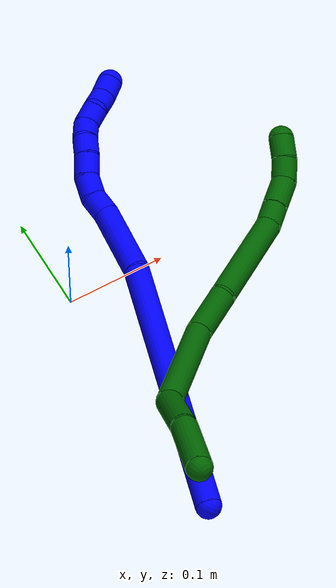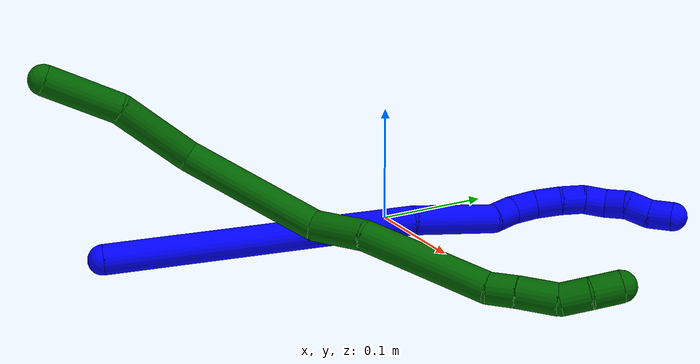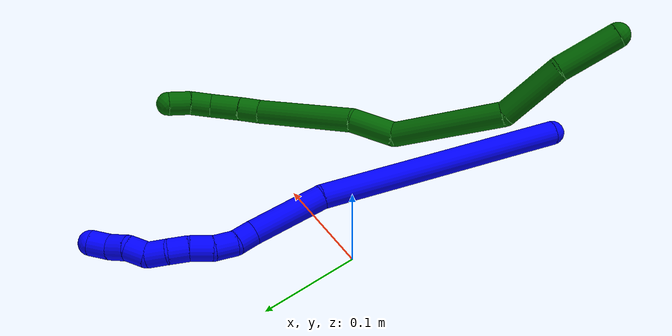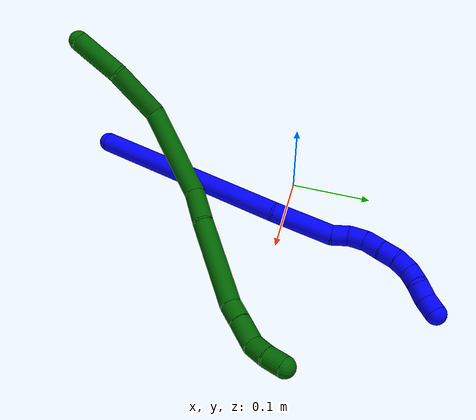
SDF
<sdf version="1.7">
 <world name="default">
  <model name="1">
   <static>0</static>
   <link name="1">
    <collision name="collision-cylinder-e_1_1_4">
     <pose>0.044026 0.105934 0.05769 -1.07212 0.349961 -0.209288</pose>
     <geometry><cylinder><radius>0.0125</radius><length>0.256816</length></cylinder></geometry>
     <surface>
      <friction><ode><mu>1.16</mu><mu2>1.16</mu2><slip1>0</slip1><slip2>0</slip2></ode></friction>
      <contact><ode><kp>1e+06</kp><kd>1</kd><max_vel>0</max_vel><min_depth>0.001</min_depth></ode></contact>
     </surface>
    </collision>
    <visual name="visual-cylinder-e_1_1_4">
     <pose>0.044026 0.105934 0.05769 -1.07212 0.349961 -0.209288</pose>
     <geometry><cylinder><radius>0.0125</radius><length>0.256816</length></cylinder></geometry>
     <material><ambient>0 0 1 1</ambient></material>
    </visual>
    <collision name="collision-cylinder-e_2_4_5">
     <pose>0.102269 0.246281 0.125098 -1.2956 0.378434 -0.287841</pose>
     <geometry><cylinder><radius>0.0125</radius><length>0.076962</length></cylinder></geometry>
     <surface>
      <friction><ode><mu>1.16</mu><mu2>1.16</mu2><slip1>0</slip1><slip2>0</slip2></ode></friction>
      <contact><ode><kp>1e+06</kp><kd>1</kd><max_vel>0</max_vel><min_depth>0.001</min_depth></ode></contact>
     </surface>
    </collision>
    <visual name="visual-cylinder-e_2_4_5">
     <pose>0.102269 0.246281 0.125098 -1.2956 0.378434 -0.287841</pose>
     <geometry><cylinder><radius>0.0125</radius><length>0.076962</length></cylinder></geometry>
     <material><ambient>0 0 1 1</ambient></material>
    </visual>
    <collision name="collision-cylinder-e_3_5_6">
     <pose>0.116732 0.290933 0.137765 -1.29019 0.023012 -0.017316</pose>
     <geometry><cylinder><radius>0.0125</radius><length>0.021317</length></cylinder></geometry>
     <surface>
      <friction><ode><mu>1.16</mu><mu2>1.16</mu2><slip1>0</slip1><slip2>0</slip2></ode></friction>
      <contact><ode><kp>1e+06</kp><kd>1</kd><max_vel>0</max_vel><min_depth>0.001</min_depth></ode></contact>
     </surface>
    </collision>
    <visual name="visual-cylinder-e_3_5_6">
     <pose>0.116732 0.290933 0.137765 -1.29019 0.023012 -0.017316</pose>
     <geometry><cylinder><radius>0.0125</radius><length>0.021317</length></cylinder></geometry>
     <material><ambient>0 0 1 1</ambient></material>
    </visual>
    <collision name="collision-cylinder-e_4_6_7">
     <pose>0.119586 0.31037 0.146283 -1.02653 0.238033 -0.134602</pose>
     <geometry><cylinder><radius>0.0125</radius><length>0.022126</length></cylinder></geometry>
     <surface>
      <friction><ode><mu>1.16</mu><mu2>1.16</mu2><slip1>0</slip1><slip2>0</slip2></ode></friction>
      <contact><ode><kp>1e+06</kp><kd>1</kd><max_vel>0</max_vel><min_depth>0.001</min_depth></ode></contact>
     </surface>
    </collision>
    <visual name="visual-cylinder-e_4_6_7">
     <pose>0.119586 0.31037 0.146283 -1.02653 0.238033 -0.134602</pose>
     <geometry><cylinder><radius>0.0125</radius><length>0.022126</length></cylinder></geometry>
     <material><ambient>0 0 1 1</ambient></material>
    </visual>
    <collision name="collision-cylinder-e_5_7_8">
     <pose>0.126632 0.326802 0.159311 -0.769912 0.403561 -0.165389</pose>
     <geometry><cylinder><radius>0.0125</radius><length>0.022601</length></cylinder></geometry>
     <surface>
      <friction><ode><mu>1.16</mu><mu2>1.16</mu2><slip1>0</slip1><slip2>0</slip2></ode></friction>
      <contact><ode><kp>1e+06</kp><kd>1</kd><max_vel>0</max_vel><min_depth>0.001</min_depth></ode></contact>
     </surface>
    </collision>
    <visual name="visual-cylinder-e_5_7_8">
     <pose>0.126632 0.326802 0.159311 -0.769912 0.403561 -0.165389</pose>
     <geometry><cylinder><radius>0.0125</radius><length>0.022601</length></cylinder></geometry>
     <material><ambient>0 0 1 1</ambient></material>
    </visual>
    <collision name="collision-cylinder-e_6_8_9">
     <pose>0.135444 0.341338 0.172107 -0.939927 0.450541 -0.231747</pose>
     <geometry><cylinder><radius>0.0125</radius><length>0.02009</length></cylinder></geometry>
     <surface>
      <friction><ode><mu>1.16</mu><mu2>1.16</mu2><slip1>0</slip1><slip2>0</slip2></ode></friction>
      <contact><ode><kp>1e+06</kp><kd>1</kd><max_vel>0</max_vel><min_depth>0.001</min_depth></ode></contact>
     </surface>
    </collision>
    <visual name="visual-cylinder-e_6_8_9">
     <pose>0.135444 0.341338 0.172107 -0.939927 0.450541 -0.231747</pose>
     <geometry><cylinder><radius>0.0125</radius><length>0.02009</length></cylinder></geometry>
     <material><ambient>0 0 1 1</ambient></material>
    </visual>
    <collision name="collision-cylinder-e_7_9_10">
     <pose>0.146221 0.35491 0.181914 -0.951097 0.693509 -0.367963</pose>
     <geometry><cylinder><radius>0.0125</radius><length>0.020032</length></cylinder></geometry>
     <surface>
      <friction><ode><mu>1.16</mu><mu2>1.16</mu2><slip1>0</slip1><slip2>0</slip2></ode></friction>
      <contact><ode><kp>1e+06</kp><kd>1</kd><max_vel>0</max_vel><min_depth>0.001</min_depth></ode></contact>
     </surface>
    </collision>
    <visual name="visual-cylinder-e_7_9_10">
     <pose>0.146221 0.35491 0.181914 -0.951097 0.693509 -0.367963</pose>
     <geometry><cylinder><radius>0.0125</radius><length>0.020032</length></cylinder></geometry>
     <material><ambient>0 0 1 1</ambient></material>
    </visual>
    <collision name="collision-cylinder-e_8_10_11">
     <pose>0.158653 0.363615 0.19401 -0.309266 0.64576 -0.104215</pose>
     <geometry><cylinder><radius>0.0125</radius><length>0.020038</length></cylinder></geometry>
     <surface>
      <friction><ode><mu>1.16</mu><mu2>1.16</mu2><slip1>0</slip1><slip2>0</slip2></ode></friction>
      <contact><ode><kp>1e+06</kp><kd>1</kd><max_vel>0</max_vel><min_depth>0.001</min_depth></ode></contact>
     </surface>
    </collision>
    <visual name="visual-cylinder-e_8_10_11">
     <pose>0.158653 0.363615 0.19401 -0.309266 0.64576 -0.104215</pose>
     <geometry><cylinder><radius>0.0125</radius><length>0.020038</length></cylinder></geometry>
     <material><ambient>0 0 1 1</ambient></material>
    </visual>
    <collision name="collision-cylinder-e_9_11_12">
     <pose>0.172929 0.36935 0.206242 -0.621224 0.96855 -0.334575</pose>
     <geometry><cylinder><radius>0.0125</radius><length>0.020015</length></cylinder></geometry>
     <surface>
      <friction><ode><mu>1.16</mu><mu2>1.16</mu2><slip1>0</slip1><slip2>0</slip2></ode></friction>
      <contact><ode><kp>1e+06</kp><kd>1</kd><max_vel>0</max_vel><min_depth>0.001</min_depth></ode></contact>
     </surface>
    </collision>
    <visual name="visual-cylinder-e_9_11_12">
     <pose>0.172929 0.36935 0.206242 -0.621224 0.96855 -0.334575</pose>
     <geometry><cylinder><radius>0.0125</radius><length>0.020015</length></cylinder></geometry>
     <material><ambient>0 0 1 1</ambient></material>
    </visual>
    <collision name="collision-cylinder-e_10_12_2">
     <pose>0.187566 0.376164 0.217696 -0.474324 0.693052 -0.174121</pose>
     <geometry><cylinder><radius>0.0125</radius><length>0.020003</length></cylinder></geometry>
     <surface>
      <friction><ode><mu>1.16</mu><mu2>1.16</mu2><slip1>0</slip1><slip2>0</slip2></ode></friction>
      <contact><ode><kp>1e+06</kp><kd>1</kd><max_vel>0</max_vel><min_depth>0.001</min_depth></ode></contact>
     </surface>
    </collision>
    <visual name="visual-cylinder-e_10_12_2">
     <pose>0.187566 0.376164 0.217696 -0.474324 0.693052 -0.174121</pose>
     <geometry><cylinder><radius>0.0125</radius><length>0.020003</length></cylinder></geometry>
     <material><ambient>0 0 1 1</ambient></material>
    </visual>
    <collision name="collision-sphere-2">
     <pose>0.193956 0.379678 0.224541 0 -0 0</pose>
     <geometry><sphere><radius>0.0125</radius></sphere></geometry>
     <surface>
      <friction><ode><mu>1.16</mu><mu2>1.16</mu2><slip1>0</slip1><slip2>0</slip2></ode></friction>
      <contact><ode><kp>1e+06</kp><kd>1</kd><max_vel>0</max_vel><min_depth>0.001</min_depth></ode></contact>
     </surface>
    </collision>
    <visual name="visual-sphere-2">
     <pose>0.193956 0.379678 0.224541 0 -0 0</pose>
     <geometry><sphere><radius>0.0125</radius></sphere></geometry>
     <material><ambient>0 0 1 1</ambient></material>
    </visual>
    <collision name="collision-sphere-12">
     <pose>0.181176 0.37265 0.210852 0 -0 0</pose>
     <geometry><sphere><radius>0.0125</radius></sphere></geometry>
     <surface>
      <friction><ode><mu>1.16</mu><mu2>1.16</mu2><slip1>0</slip1><slip2>0</slip2></ode></friction>
      <contact><ode><kp>1e+06</kp><kd>1</kd><max_vel>0</max_vel><min_depth>0.001</min_depth></ode></contact>
     </surface>
    </collision>
    <visual name="visual-sphere-12">
     <pose>0.181176 0.37265 0.210852 0 -0 0</pose>
     <geometry><sphere><radius>0.0125</radius></sphere></geometry>
     <material><ambient>0 0 1 1</ambient></material>
    </visual>
    <collision name="collision-sphere-11">
     <pose>0.164682 0.366051 0.201632 0 -0 0</pose>
     <geometry><sphere><radius>0.0125</radius></sphere></geometry>
     <surface>
      <friction><ode><mu>1.16</mu><mu2>1.16</mu2><slip1>0</slip1><slip2>0</slip2></ode></friction>
      <contact><ode><kp>1e+06</kp><kd>1</kd><max_vel>0</max_vel><min_depth>0.001</min_depth></ode></contact>
     </surface>
    </collision>
    <visual name="visual-sphere-11">
     <pose>0.164682 0.366051 0.201632 0 -0 0</pose>
     <geometry><sphere><radius>0.0125</radius></sphere></geometry>
     <material><ambient>0 0 1 1</ambient></material>
    </visual>
    <collision name="collision-sphere-10">
     <pose>0.152623 0.36118 0.186387 0 -0 0</pose>
     <geometry><sphere><radius>0.0125</radius></sphere></geometry>
     <surface>
      <friction><ode><mu>1.16</mu><mu2>1.16</mu2><slip1>0</slip1><slip2>0</slip2></ode></friction>
      <contact><ode><kp>1e+06</kp><kd>1</kd><max_vel>0</max_vel><min_depth>0.001</min_depth></ode></contact>
     </surface>
    </collision>
    <visual name="visual-sphere-10">
     <pose>0.152623 0.36118 0.186387 0 -0 0</pose>
     <geometry><sphere><radius>0.0125</radius></sphere></geometry>
     <material><ambient>0 0 1 1</ambient></material>
    </visual>
    <collision name="collision-sphere-9">
     <pose>0.139818 0.34864 0.177441 0 -0 0</pose>
     <geometry><sphere><radius>0.0125</radius></sphere></geometry>
     <surface>
      <friction><ode><mu>1.16</mu><mu2>1.16</mu2><slip1>0</slip1><slip2>0</slip2></ode></friction>
      <contact><ode><kp>1e+06</kp><kd>1</kd><max_vel>0</max_vel><min_depth>0.001</min_depth></ode></contact>
     </surface>
    </collision>
    <visual name="visual-sphere-9">
     <pose>0.139818 0.34864 0.177441 0 -0 0</pose>
     <geometry><sphere><radius>0.0125</radius></sphere></geometry>
     <material><ambient>0 0 1 1</ambient></material>
    </visual>
    <collision name="collision-sphere-4">
     <pose>0.088052 0.211869 0.115381 0 -0 0</pose>
     <geometry><sphere><radius>0.0125</radius></sphere></geometry>
     <surface>
      <friction><ode><mu>1.16</mu><mu2>1.16</mu2><slip1>0</slip1><slip2>0</slip2></ode></friction>
      <contact><ode><kp>1e+06</kp><kd>1</kd><max_vel>0</max_vel><min_depth>0.001</min_depth></ode></contact>
     </surface>
    </collision>
    <visual name="visual-sphere-4">
     <pose>0.088052 0.211869 0.115381 0 -0 0</pose>
     <geometry><sphere><radius>0.0125</radius></sphere></geometry>
     <material><ambient>0 0 1 1</ambient></material>
    </visual>
    <collision name="collision-sphere-1">
     <geometry><sphere><radius>0.0125</radius></sphere></geometry>
     <surface>
      <friction><ode><mu>1.16</mu><mu2>1.16</mu2><slip1>0</slip1><slip2>0</slip2></ode></friction>
      <contact><ode><kp>1e+06</kp><kd>1</kd><max_vel>0</max_vel><min_depth>0.001</min_depth></ode></contact>
     </surface>
    </collision>
    <visual name="visual-sphere-1">
     <geometry><sphere><radius>0.0125</radius></sphere></geometry>
     <material><ambient>0 0 1 1</ambient></material>
    </visual>
    <collision name="collision-sphere-8">
     <pose>0.13107 0.334036 0.166773 0 -0 0</pose>
     <geometry><sphere><radius>0.0125</radius></sphere></geometry>
     <surface>
      <friction><ode><mu>1.16</mu><mu2>1.16</mu2><slip1>0</slip1><slip2>0</slip2></ode></friction>
      <contact><ode><kp>1e+06</kp><kd>1</kd><max_vel>0</max_vel><min_depth>0.001</min_depth></ode></contact>
     </surface>
    </collision>
    <visual name="visual-sphere-8">
     <pose>0.13107 0.334036 0.166773 0 -0 0</pose>
     <geometry><sphere><radius>0.0125</radius></sphere></geometry>
     <material><ambient>0 0 1 1</ambient></material>
    </visual>
    <collision name="collision-sphere-5">
     <pose>0.116487 0.280694 0.134814 0 -0 0</pose>
     <geometry><sphere><radius>0.0125</radius></sphere></geometry>
     <surface>
      <friction><ode><mu>1.16</mu><mu2>1.16</mu2><slip1>0</slip1><slip2>0</slip2></ode></friction>
      <contact><ode><kp>1e+06</kp><kd>1</kd><max_vel>0</max_vel><min_depth>0.001</min_depth></ode></contact>
     </surface>
    </collision>
    <visual name="visual-sphere-5">
     <pose>0.116487 0.280694 0.134814 0 -0 0</pose>
     <geometry><sphere><radius>0.0125</radius></sphere></geometry>
     <material><ambient>0 0 1 1</ambient></material>
    </visual>
    <collision name="collision-sphere-6">
     <pose>0.116977 0.301172 0.140716 0 -0 0</pose>
     <geometry><sphere><radius>0.0125</radius></sphere></geometry>
     <surface>
      <friction><ode><mu>1.16</mu><mu2>1.16</mu2><slip1>0</slip1><slip2>0</slip2></ode></friction>
      <contact><ode><kp>1e+06</kp><kd>1</kd><max_vel>0</max_vel><min_depth>0.001</min_depth></ode></contact>
     </surface>
    </collision>
    <visual name="visual-sphere-6">
     <pose>0.116977 0.301172 0.140716 0 -0 0</pose>
     <geometry><sphere><radius>0.0125</radius></sphere></geometry>
     <material><ambient>0 0 1 1</ambient></material>
    </visual>
    <collision name="collision-sphere-7">
     <pose>0.122194 0.319567 0.15185 0 -0 0</pose>
     <geometry><sphere><radius>0.0125</radius></sphere></geometry>
     <surface>
      <friction><ode><mu>1.16</mu><mu2>1.16</mu2><slip1>0</slip1><slip2>0</slip2></ode></friction>
      <contact><ode><kp>1e+06</kp><kd>1</kd><max_vel>0</max_vel><min_depth>0.001</min_depth></ode></contact>
     </surface>
    </collision>
    <visual name="visual-sphere-7">
     <pose>0.122194 0.319567 0.15185 0 -0 0</pose>
     <geometry><sphere><radius>0.0125</radius></sphere></geometry>
     <material><ambient>0 0 1 1</ambient></material>
    </visual>
    <inertial>
     <pose>0.086432 0.20557 0.107379 0 -0 0</pose>
     <mass>0.5</mass>
     <inertia>
      <ixx>0.001078</ixx>
      <ixy>0</ixy>
      <ixz>0</ixz>
      <iyy>0.000517</iyy>
      <iyz>0</iyz>
      <izz>-0.001708</izz>
     </inertia>
    </inertial>
   </link>
   <pose>-0.000691 -0.259199 0.011489 -0.051712 0.800896 0.296354</pose>
  </model>
  <model name="6">
   <static>0</static>
   <link name="6">
    <collision name="collision-cylinder-e_1_1_4">
     <pose>0.015183 -0.001931 -0.027075 3.07041 0.50999 2.87007</pose>
     <geometry><cylinder><radius>0.0125</radius><length>0.062204</length></cylinder></geometry>
     <surface>
      <friction><ode><mu>1.16</mu><mu2>1.16</mu2><slip1>0</slip1><slip2>0</slip2></ode></friction>
      <contact><ode><kp>1e+06</kp><kd>1</kd><max_vel>0</max_vel><min_depth>0.001</min_depth></ode></contact>
     </surface>
    </collision>
    <visual name="visual-cylinder-e_1_1_4">
     <pose>0.015183 -0.001931 -0.027075 3.07041 0.50999 2.87007</pose>
     <geometry><cylinder><radius>0.0125</radius><length>0.062204</length></cylinder></geometry>
     <material><ambient>0 0.392157 0.003922 1</ambient></material>
    </visual>
    <collision name="collision-cylinder-e_2_4_5">
     <pose>0.04787 -0.014077 -0.080611 2.77314 0.552916 1.97937</pose>
     <geometry><cylinder><radius>0.0125</radius><length>0.066661</length></cylinder></geometry>
     <surface>
      <friction><ode><mu>1.16</mu><mu2>1.16</mu2><slip1>0</slip1><slip2>0</slip2></ode></friction>
      <contact><ode><kp>1e+06</kp><kd>1</kd><max_vel>0</max_vel><min_depth>0.001</min_depth></ode></contact>
     </surface>
    </collision>
    <visual name="visual-cylinder-e_2_4_5">
     <pose>0.04787 -0.014077 -0.080611 2.77314 0.552916 1.97937</pose>
     <geometry><cylinder><radius>0.0125</radius><length>0.066661</length></cylinder></geometry>
     <material><ambient>0 0.392157 0.003922 1</ambient></material>
    </visual>
    <collision name="collision-cylinder-e_3_5_6">
     <pose>0.112523 -0.0208 -0.141629 -3.04085 0.935876 -2.94274</pose>
     <geometry><cylinder><radius>0.0125</radius><length>0.117123</length></cylinder></geometry>
     <surface>
      <friction><ode><mu>1.16</mu><mu2>1.16</mu2><slip1>0</slip1><slip2>0</slip2></ode></friction>
      <contact><ode><kp>1e+06</kp><kd>1</kd><max_vel>0</max_vel><min_depth>0.001</min_depth></ode></contact>
     </surface>
    </collision>
    <visual name="visual-cylinder-e_3_5_6">
     <pose>0.112523 -0.0208 -0.141629 -3.04085 0.935876 -2.94274</pose>
     <geometry><cylinder><radius>0.0125</radius><length>0.117123</length></cylinder></geometry>
     <material><ambient>0 0.392157 0.003922 1</ambient></material>
    </visual>
    <collision name="collision-cylinder-e_4_6_7">
     <pose>0.178137 -0.005523 -0.184362 -2.17732 0.910448 -1.50405</pose>
     <geometry><cylinder><radius>0.0125</radius><length>0.046761</length></cylinder></geometry>
     <surface>
      <friction><ode><mu>1.16</mu><mu2>1.16</mu2><slip1>0</slip1><slip2>0</slip2></ode></friction>
      <contact><ode><kp>1e+06</kp><kd>1</kd><max_vel>0</max_vel><min_depth>0.001</min_depth></ode></contact>
     </surface>
    </collision>
    <visual name="visual-cylinder-e_4_6_7">
     <pose>0.178137 -0.005523 -0.184362 -2.17732 0.910448 -1.50405</pose>
     <geometry><cylinder><radius>0.0125</radius><length>0.046761</length></cylinder></geometry>
     <material><ambient>0 0.392157 0.003922 1</ambient></material>
    </visual>
    <collision name="collision-cylinder-e_5_7_8">
     <pose>0.241915 0.020792 -0.216151 -2.58995 1.02166 -2.20629</pose>
     <geometry><cylinder><radius>0.0125</radius><length>0.106246</length></cylinder></geometry>
     <surface>
      <friction><ode><mu>1.16</mu><mu2>1.16</mu2><slip1>0</slip1><slip2>0</slip2></ode></friction>
      <contact><ode><kp>1e+06</kp><kd>1</kd><max_vel>0</max_vel><min_depth>0.001</min_depth></ode></contact>
     </surface>
    </collision>
    <visual name="visual-cylinder-e_5_7_8">
     <pose>0.241915 0.020792 -0.216151 -2.58995 1.02166 -2.20629</pose>
     <geometry><cylinder><radius>0.0125</radius><length>0.106246</length></cylinder></geometry>
     <material><ambient>0 0.392157 0.003922 1</ambient></material>
    </visual>
    <collision name="collision-cylinder-e_6_8_9">
     <pose>0.295092 0.040582 -0.245946 -2.43662 0.769639 -1.66689</pose>
     <geometry><cylinder><radius>0.0125</radius><length>0.022602</length></cylinder></geometry>
     <surface>
      <friction><ode><mu>1.16</mu><mu2>1.16</mu2><slip1>0</slip1><slip2>0</slip2></ode></friction>
      <contact><ode><kp>1e+06</kp><kd>1</kd><max_vel>0</max_vel><min_depth>0.001</min_depth></ode></contact>
     </surface>
    </collision>
    <visual name="visual-cylinder-e_6_8_9">
     <pose>0.295092 0.040582 -0.245946 -2.43662 0.769639 -1.66689</pose>
     <geometry><cylinder><radius>0.0125</radius><length>0.022602</length></cylinder></geometry>
     <material><ambient>0 0.392157 0.003922 1</ambient></material>
    </visual>
    <collision name="collision-cylinder-e_7_9_10">
     <pose>0.314616 0.052696 -0.260982 -2.48284 0.805611 -1.7894</pose>
     <geometry><cylinder><radius>0.0125</radius><length>0.032333</length></cylinder></geometry>
     <surface>
      <friction><ode><mu>1.16</mu><mu2>1.16</mu2><slip1>0</slip1><slip2>0</slip2></ode></friction>
      <contact><ode><kp>1e+06</kp><kd>1</kd><max_vel>0</max_vel><min_depth>0.001</min_depth></ode></contact>
     </surface>
    </collision>
    <visual name="visual-cylinder-e_7_9_10">
     <pose>0.314616 0.052696 -0.260982 -2.48284 0.805611 -1.7894</pose>
     <geometry><cylinder><radius>0.0125</radius><length>0.032333</length></cylinder></geometry>
     <material><ambient>0 0.392157 0.003922 1</ambient></material>
    </visual>
    <collision name="collision-cylinder-e_8_10_11">
     <pose>0.330778 0.066719 -0.277541 -2.39223 0.404251 -0.960764</pose>
     <geometry><cylinder><radius>0.0125</radius><length>0.022891</length></cylinder></geometry>
     <surface>
      <friction><ode><mu>1.16</mu><mu2>1.16</mu2><slip1>0</slip1><slip2>0</slip2></ode></friction>
      <contact><ode><kp>1e+06</kp><kd>1</kd><max_vel>0</max_vel><min_depth>0.001</min_depth></ode></contact>
     </surface>
    </collision>
    <visual name="visual-cylinder-e_8_10_11">
     <pose>0.330778 0.066719 -0.277541 -2.39223 0.404251 -0.960764</pose>
     <geometry><cylinder><radius>0.0125</radius><length>0.022891</length></cylinder></geometry>
     <material><ambient>0 0.392157 0.003922 1</ambient></material>
    </visual>
    <collision name="collision-cylinder-e_9_11_2">
     <pose>0.338865 0.079985 -0.294427 -2.55532 0.314461 -0.967294</pose>
     <geometry><cylinder><radius>0.0125</radius><length>0.023181</length></cylinder></geometry>
     <surface>
      <friction><ode><mu>1.16</mu><mu2>1.16</mu2><slip1>0</slip1><slip2>0</slip2></ode></friction>
      <contact><ode><kp>1e+06</kp><kd>1</kd><max_vel>0</max_vel><min_depth>0.001</min_depth></ode></contact>
     </surface>
    </collision>
    <visual name="visual-cylinder-e_9_11_2">
     <pose>0.338865 0.079985 -0.294427 -2.55532 0.314461 -0.967294</pose>
     <geometry><cylinder><radius>0.0125</radius><length>0.023181</length></cylinder></geometry>
     <material><ambient>0 0.392157 0.003922 1</ambient></material>
    </visual>
    <collision name="collision-sphere-2">
     <pose>0.34245 0.086083 -0.303608 0 -0 0</pose>
     <geometry><sphere><radius>0.0125</radius></sphere></geometry>
     <surface>
      <friction><ode><mu>1.16</mu><mu2>1.16</mu2><slip1>0</slip1><slip2>0</slip2></ode></friction>
      <contact><ode><kp>1e+06</kp><kd>1</kd><max_vel>0</max_vel><min_depth>0.001</min_depth></ode></contact>
     </surface>
    </collision>
    <visual name="visual-sphere-2">
     <pose>0.34245 0.086083 -0.303608 0 -0 0</pose>
     <geometry><sphere><radius>0.0125</radius></sphere></geometry>
     <material><ambient>0 0.392157 0.003922 1</ambient></material>
    </visual>
    <collision name="collision-sphere-11">
     <pose>0.33528 0.073887 -0.285246 0 -0 0</pose>
     <geometry><sphere><radius>0.0125</radius></sphere></geometry>
     <surface>
      <friction><ode><mu>1.16</mu><mu2>1.16</mu2><slip1>0</slip1><slip2>0</slip2></ode></friction>
      <contact><ode><kp>1e+06</kp><kd>1</kd><max_vel>0</max_vel><min_depth>0.001</min_depth></ode></contact>
     </surface>
    </collision>
    <visual name="visual-sphere-11">
     <pose>0.33528 0.073887 -0.285246 0 -0 0</pose>
     <geometry><sphere><radius>0.0125</radius></sphere></geometry>
     <material><ambient>0 0.392157 0.003922 1</ambient></material>
    </visual>
    <collision name="collision-sphere-10">
     <pose>0.326276 0.059551 -0.269837 0 -0 0</pose>
     <geometry><sphere><radius>0.0125</radius></sphere></geometry>
     <surface>
      <friction><ode><mu>1.16</mu><mu2>1.16</mu2><slip1>0</slip1><slip2>0</slip2></ode></friction>
      <contact><ode><kp>1e+06</kp><kd>1</kd><max_vel>0</max_vel><min_depth>0.001</min_depth></ode></contact>
     </surface>
    </collision>
    <visual name="visual-sphere-10">
     <pose>0.326276 0.059551 -0.269837 0 -0 0</pose>
     <geometry><sphere><radius>0.0125</radius></sphere></geometry>
     <material><ambient>0 0.392157 0.003922 1</ambient></material>
    </visual>
    <collision name="collision-sphere-9">
     <pose>0.302956 0.045842 -0.252128 0 -0 0</pose>
     <geometry><sphere><radius>0.0125</radius></sphere></geometry>
     <surface>
      <friction><ode><mu>1.16</mu><mu2>1.16</mu2><slip1>0</slip1><slip2>0</slip2></ode></friction>
      <contact><ode><kp>1e+06</kp><kd>1</kd><max_vel>0</max_vel><min_depth>0.001</min_depth></ode></contact>
     </surface>
    </collision>
    <visual name="visual-sphere-9">
     <pose>0.302956 0.045842 -0.252128 0 -0 0</pose>
     <geometry><sphere><radius>0.0125</radius></sphere></geometry>
     <material><ambient>0 0.392157 0.003922 1</ambient></material>
    </visual>
    <collision name="collision-sphere-4">
     <pose>0.030366 -0.003861 -0.054151 0 -0 0</pose>
     <geometry><sphere><radius>0.0125</radius></sphere></geometry>
     <surface>
      <friction><ode><mu>1.16</mu><mu2>1.16</mu2><slip1>0</slip1><slip2>0</slip2></ode></friction>
      <contact><ode><kp>1e+06</kp><kd>1</kd><max_vel>0</max_vel><min_depth>0.001</min_depth></ode></contact>
     </surface>
    </collision>
    <visual name="visual-sphere-4">
     <pose>0.030366 -0.003861 -0.054151 0 -0 0</pose>
     <geometry><sphere><radius>0.0125</radius></sphere></geometry>
     <material><ambient>0 0.392157 0.003922 1</ambient></material>
    </visual>
    <collision name="collision-sphere-1">
     <geometry><sphere><radius>0.0125</radius></sphere></geometry>
     <surface>
      <friction><ode><mu>1.16</mu><mu2>1.16</mu2><slip1>0</slip1><slip2>0</slip2></ode></friction>
      <contact><ode><kp>1e+06</kp><kd>1</kd><max_vel>0</max_vel><min_depth>0.001</min_depth></ode></contact>
     </surface>
    </collision>
    <visual name="visual-sphere-1">
     <geometry><sphere><radius>0.0125</radius></sphere></geometry>
     <material><ambient>0 0.392157 0.003922 1</ambient></material>
    </visual>
    <collision name="collision-sphere-8">
     <pose>0.287228 0.035323 -0.239765 0 -0 0</pose>
     <geometry><sphere><radius>0.0125</radius></sphere></geometry>
     <surface>
      <friction><ode><mu>1.16</mu><mu2>1.16</mu2><slip1>0</slip1><slip2>0</slip2></ode></friction>
      <contact><ode><kp>1e+06</kp><kd>1</kd><max_vel>0</max_vel><min_depth>0.001</min_depth></ode></contact>
     </surface>
    </collision>
    <visual name="visual-sphere-8">
     <pose>0.287228 0.035323 -0.239765 0 -0 0</pose>
     <geometry><sphere><radius>0.0125</radius></sphere></geometry>
     <material><ambient>0 0.392157 0.003922 1</ambient></material>
    </visual>
    <collision name="collision-sphere-5">
     <pose>0.065374 -0.024293 -0.107072 0 -0 0</pose>
     <geometry><sphere><radius>0.0125</radius></sphere></geometry>
     <surface>
      <friction><ode><mu>1.16</mu><mu2>1.16</mu2><slip1>0</slip1><slip2>0</slip2></ode></friction>
      <contact><ode><kp>1e+06</kp><kd>1</kd><max_vel>0</max_vel><min_depth>0.001</min_depth></ode></contact>
     </surface>
    </collision>
    <visual name="visual-sphere-5">
     <pose>0.065374 -0.024293 -0.107072 0 -0 0</pose>
     <geometry><sphere><radius>0.0125</radius></sphere></geometry>
     <material><ambient>0 0.392157 0.003922 1</ambient></material>
    </visual>
    <collision name="collision-sphere-6">
     <pose>0.159672 -0.017307 -0.176187 0 -0 0</pose>
     <geometry><sphere><radius>0.0125</radius></sphere></geometry>
     <surface>
      <friction><ode><mu>1.16</mu><mu2>1.16</mu2><slip1>0</slip1><slip2>0</slip2></ode></friction>
      <contact><ode><kp>1e+06</kp><kd>1</kd><max_vel>0</max_vel><min_depth>0.001</min_depth></ode></contact>
     </surface>
    </collision>
    <visual name="visual-sphere-6">
     <pose>0.159672 -0.017307 -0.176187 0 -0 0</pose>
     <geometry><sphere><radius>0.0125</radius></sphere></geometry>
     <material><ambient>0 0.392157 0.003922 1</ambient></material>
    </visual>
    <collision name="collision-sphere-7">
     <pose>0.196603 0.00626 -0.192536 0 -0 0</pose>
     <geometry><sphere><radius>0.0125</radius></sphere></geometry>
     <surface>
      <friction><ode><mu>1.16</mu><mu2>1.16</mu2><slip1>0</slip1><slip2>0</slip2></ode></friction>
      <contact><ode><kp>1e+06</kp><kd>1</kd><max_vel>0</max_vel><min_depth>0.001</min_depth></ode></contact>
     </surface>
    </collision>
    <visual name="visual-sphere-7">
     <pose>0.196603 0.00626 -0.192536 0 -0 0</pose>
     <geometry><sphere><radius>0.0125</radius></sphere></geometry>
     <material><ambient>0 0.392157 0.003922 1</ambient></material>
    </visual>
    <inertial>
     <pose>0.167231 0.008917 -0.164814 0 -0 0</pose>
     <mass>0.5</mass>
     <inertia>
      <ixx>-0.000159</ixx>
      <ixy>0</ixy>
      <ixz>0</ixz>
      <iyy>0.000233</iyy>
      <iyz>0</iyz>
      <izz>-0.0003</izz>
     </inertia>
    </inertial>
   </link>
   <pose>-0.028865 -0.287124 0.15634 1.38522 0.484507 0.071581</pose>
  </model>
 </world>
</sdf>
